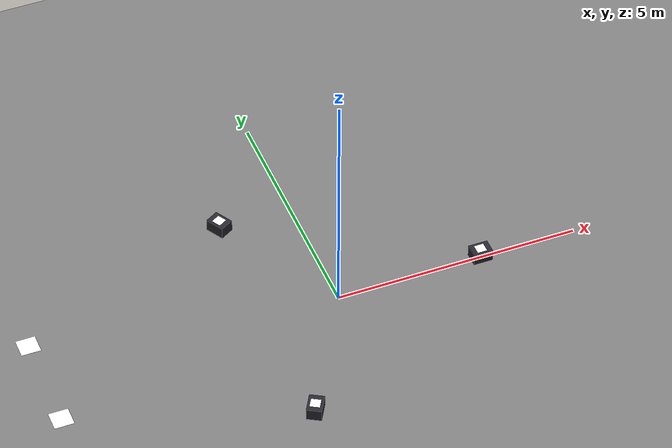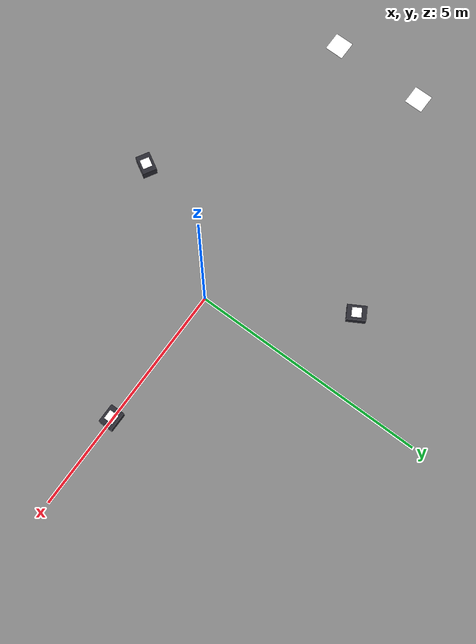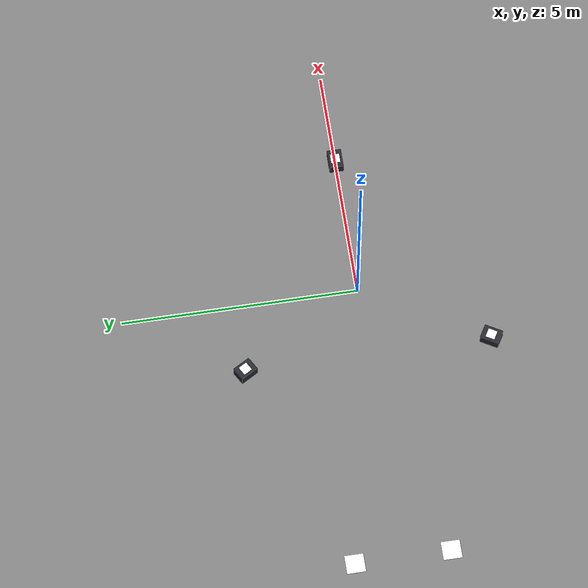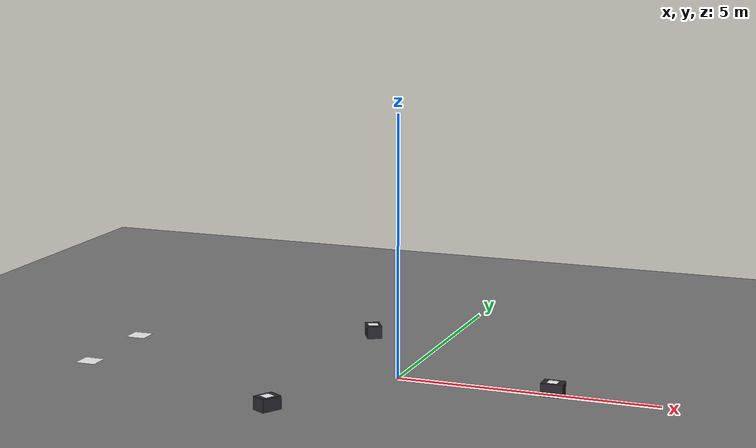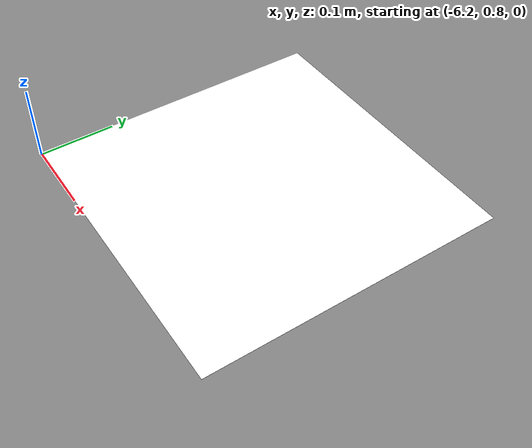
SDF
<?xml version="1.0"?>
<sdf version="1.9">
  <world name="convoy_3lane">

    <!-- Camera render (SIM-3) + the flight-sensor systems PX4 needs (identical
         to convoy_px4.sdf — without Imu/AirPressure/Magnetometer/NavSat PX4
         preflight fails "sensor missing"). -->
    <plugin filename="gz-sim-physics-system"           name="gz::sim::systems::Physics"/>
    <plugin filename="gz-sim-user-commands-system"     name="gz::sim::systems::UserCommands"/>
    <plugin filename="gz-sim-scene-broadcaster-system" name="gz::sim::systems::SceneBroadcaster"/>
    <plugin filename="gz-sim-sensors-system"           name="gz::sim::systems::Sensors">
      <render_engine>ogre2</render_engine>
    </plugin>
    <plugin filename="gz-sim-imu-system"               name="gz::sim::systems::Imu"/>
    <plugin filename="gz-sim-air-pressure-system"      name="gz::sim::systems::AirPressure"/>
    <plugin filename="gz-sim-air-speed-system"         name="gz::sim::systems::AirSpeed"/>
    <plugin filename="gz-sim-altimeter-system"         name="gz::sim::systems::Altimeter"/>
    <plugin filename="gz-sim-magnetometer-system"      name="gz::sim::systems::Magnetometer"/>
    <plugin filename="gz-sim-navsat-system"            name="gz::sim::systems::NavSat"/>
    <plugin filename="gz-sim-forcetorque-system"       name="gz::sim::systems::ForceTorque"/>
    <plugin filename="gz-sim-contact-system"           name="gz::sim::systems::Contact"/>

    <!-- GPS/NavSat origin (PX4 needs a global origin to fuse position). -->
    <spherical_coordinates>
      <surface_model>EARTH_WGS84</surface_model>
      <world_frame_orientation>ENU</world_frame_orientation>
      <latitude_deg>47.397971057728974</latitude_deg>
      <longitude_deg>8.546163739800146</longitude_deg>
      <elevation>0</elevation>
    </spherical_coordinates>

    <scene>
      <ambient>0.4 0.4 0.4 1</ambient>
      <background>0.7 0.7 0.75 1</background>
      <grid>false</grid>
    </scene>

    <light type="directional" name="sun">
      <cast_shadows>false</cast_shadows>
      <pose>0 0 10 0 0 0</pose>
      <diffuse>1 1 1 1</diffuse>
      <specular>0.3 0.3 0.3 1</specular>
      <direction>0.2 0.2 -1.0</direction>
    </light>

    <model name="ground_plane">
      <static>true</static>
      <link name="link">
        <collision name="col">
          <geometry><plane><normal>0 0 1</normal><size>100 100</size></plane></geometry>
        </collision>
        <visual name="vis">
          <geometry><plane><normal>0 0 1</normal><size>100 100</size></plane></geometry>
          <material><diffuse>0.5 0.5 0.5 1</diffuse><specular>0.1 0.1 0.1 1</specular></material>
        </visual>
      </link>
    </model>

    <!-- 3 convoy robots, 3 diverging lanes (see header). Distinct spawn yaws +
         a forward-only Twist (run_convoy.sh CONVOY_ANGULAR=0) = 3 straight lanes. -->
    <include><uri>model://convoy_robot_7</uri> <name>convoy_robot_7</name> <pose>3.0 0 0 0 0 0</pose></include>
    <include><uri>model://convoy_robot_23</uri><name>convoy_robot_23</name><pose>-1.5 2.6 0 0 0 2.094</pose></include>
    <include><uri>model://convoy_robot_88</uri><name>convoy_robot_88</name><pose>-1.5 -2.6 0 0 0 4.189</pose></include>

    <include><uri>model://pad_100</uri><name>pad_100</name><pose>-6.0 1.0 0 0 0 0</pose></include>
    <include><uri>model://pad_101</uri><name>pad_101</name><pose>-6.0 -1.0 0 0 0 0</pose></include>

  </world>
</sdf>

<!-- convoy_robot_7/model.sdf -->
<sdf version="1.9">
  <model name="convoy_robot_7">
    <!-- SIM-3 convoy robot carrying aruco id=7 (20cm). Generated by sim/gen_markers.py. -->
    <link name="base_link">
      <pose>0 0 0.1300 0 0 0</pose>
      <inertial>
        <mass>5.0</mass>
        <inertia><ixx>0.08</ixx><iyy>0.12</iyy><izz>0.15</izz><ixy>0</ixy><ixz>0</ixz><iyz>0</iyz></inertia>
      </inertial>
      <collision name="chassis_col">
        <geometry><box><size>0.4 0.3 0.25</size></box></geometry>
      </collision>
      <visual name="chassis_vis">
        <geometry><box><size>0.4 0.3 0.25</size></box></geometry>
        <material><diffuse>0.15 0.15 0.18 1</diffuse></material>
      </visual>
      <visual name="marker_top">
        <pose>0 0 0.1255 0 0 0</pose>
        <geometry>
          <plane><normal>0 0 1</normal><size>0.2000 0.2000</size></plane>
        </geometry>
        <material>
          <diffuse>1 1 1 1</diffuse>
          <specular>0 0 0 1</specular>
          <pbr>
            <metal>
              <albedo_map>model://convoy_robot_7/materials/textures/convoy_robot_7.png</albedo_map>
              <metalness>0.0</metalness>
              <roughness>1.0</roughness>
            </metal>
          </pbr>
        </material>
      </visual>
    </link>
    <plugin filename="gz-sim-velocity-control-system"
            name="gz::sim::systems::VelocityControl">
      <topic>/model/convoy_robot_7/cmd_vel</topic>
      <!-- hold still (no gravity fall) until the rclpy driver sends cmd_vel;
           linear is body-frame, so constant linear.x + angular.z => a circle. -->
      <initial_linear>0 0 0</initial_linear>
      <initial_angular>0 0 0</initial_angular>
    </plugin>
  </model>
</sdf>

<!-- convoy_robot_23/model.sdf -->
<sdf version="1.9">
  <model name="convoy_robot_23">
    <!-- SIM-3 convoy robot carrying aruco id=23 (20cm). Generated by sim/gen_markers.py. -->
    <link name="base_link">
      <pose>0 0 0.1300 0 0 0</pose>
      <inertial>
        <mass>5.0</mass>
        <inertia><ixx>0.08</ixx><iyy>0.12</iyy><izz>0.15</izz><ixy>0</ixy><ixz>0</ixz><iyz>0</iyz></inertia>
      </inertial>
      <collision name="chassis_col">
        <geometry><box><size>0.4 0.3 0.25</size></box></geometry>
      </collision>
      <visual name="chassis_vis">
        <geometry><box><size>0.4 0.3 0.25</size></box></geometry>
        <material><diffuse>0.15 0.15 0.18 1</diffuse></material>
      </visual>
      <visual name="marker_top">
        <pose>0 0 0.1255 0 0 0</pose>
        <geometry>
          <plane><normal>0 0 1</normal><size>0.2000 0.2000</size></plane>
        </geometry>
        <material>
          <diffuse>1 1 1 1</diffuse>
          <specular>0 0 0 1</specular>
          <pbr>
            <metal>
              <albedo_map>model://convoy_robot_23/materials/textures/convoy_robot_23.png</albedo_map>
              <metalness>0.0</metalness>
              <roughness>1.0</roughness>
            </metal>
          </pbr>
        </material>
      </visual>
    </link>
    <plugin filename="gz-sim-velocity-control-system"
            name="gz::sim::systems::VelocityControl">
      <topic>/model/convoy_robot_23/cmd_vel</topic>
      <!-- hold still (no gravity fall) until the rclpy driver sends cmd_vel;
           linear is body-frame, so constant linear.x + angular.z => a circle. -->
      <initial_linear>0 0 0</initial_linear>
      <initial_angular>0 0 0</initial_angular>
    </plugin>
  </model>
</sdf>

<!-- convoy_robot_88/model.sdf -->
<sdf version="1.9">
  <model name="convoy_robot_88">
    <!-- SIM-3 convoy robot carrying aruco id=88 (20cm). Generated by sim/gen_markers.py. -->
    <link name="base_link">
      <pose>0 0 0.1300 0 0 0</pose>
      <inertial>
        <mass>5.0</mass>
        <inertia><ixx>0.08</ixx><iyy>0.12</iyy><izz>0.15</izz><ixy>0</ixy><ixz>0</ixz><iyz>0</iyz></inertia>
      </inertial>
      <collision name="chassis_col">
        <geometry><box><size>0.4 0.3 0.25</size></box></geometry>
      </collision>
      <visual name="chassis_vis">
        <geometry><box><size>0.4 0.3 0.25</size></box></geometry>
        <material><diffuse>0.15 0.15 0.18 1</diffuse></material>
      </visual>
      <visual name="marker_top">
        <pose>0 0 0.1255 0 0 0</pose>
        <geometry>
          <plane><normal>0 0 1</normal><size>0.2000 0.2000</size></plane>
        </geometry>
        <material>
          <diffuse>1 1 1 1</diffuse>
          <specular>0 0 0 1</specular>
          <pbr>
            <metal>
              <albedo_map>model://convoy_robot_88/materials/textures/convoy_robot_88.png</albedo_map>
              <metalness>0.0</metalness>
              <roughness>1.0</roughness>
            </metal>
          </pbr>
        </material>
      </visual>
    </link>
    <plugin filename="gz-sim-velocity-control-system"
            name="gz::sim::systems::VelocityControl">
      <topic>/model/convoy_robot_88/cmd_vel</topic>
      <!-- hold still (no gravity fall) until the rclpy driver sends cmd_vel;
           linear is body-frame, so constant linear.x + angular.z => a circle. -->
      <initial_linear>0 0 0</initial_linear>
      <initial_angular>0 0 0</initial_angular>
    </plugin>
  </model>
</sdf>

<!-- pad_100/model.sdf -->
<sdf version="1.9">
  <model name="pad_100">
    <!-- SIM-3 aruco id=100, 40cm static plane. Generated by sim/gen_markers.py. -->
    <static>true</static>
    <link name="link">
      <pose>0 0 0.001 0 0 0</pose>
      <visual name="marker_visual">
        <geometry>
          <plane><normal>0 0 1</normal><size>0.4000 0.4000</size></plane>
        </geometry>
        <material>
          <diffuse>1 1 1 1</diffuse>
          <specular>0 0 0 1</specular>
          <pbr>
            <metal>
              <albedo_map>model://pad_100/materials/textures/pad_100.png</albedo_map>
              <metalness>0.0</metalness>
              <roughness>1.0</roughness>
            </metal>
          </pbr>
        </material>
      </visual>
    </link>
  </model>
</sdf>

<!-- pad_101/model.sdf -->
<sdf version="1.9">
  <model name="pad_101">
    <!-- SIM-3 aruco id=101, 40cm static plane. Generated by sim/gen_markers.py. -->
    <static>true</static>
    <link name="link">
      <pose>0 0 0.001 0 0 0</pose>
      <visual name="marker_visual">
        <geometry>
          <plane><normal>0 0 1</normal><size>0.4000 0.4000</size></plane>
        </geometry>
        <material>
          <diffuse>1 1 1 1</diffuse>
          <specular>0 0 0 1</specular>
          <pbr>
            <metal>
              <albedo_map>model://pad_101/materials/textures/pad_101.png</albedo_map>
              <metalness>0.0</metalness>
              <roughness>1.0</roughness>
            </metal>
          </pbr>
        </material>
      </visual>
    </link>
  </model>
</sdf>
